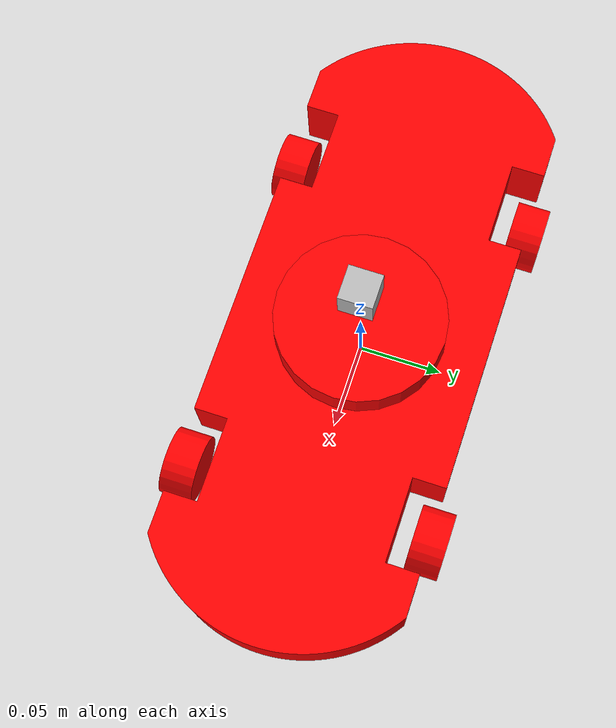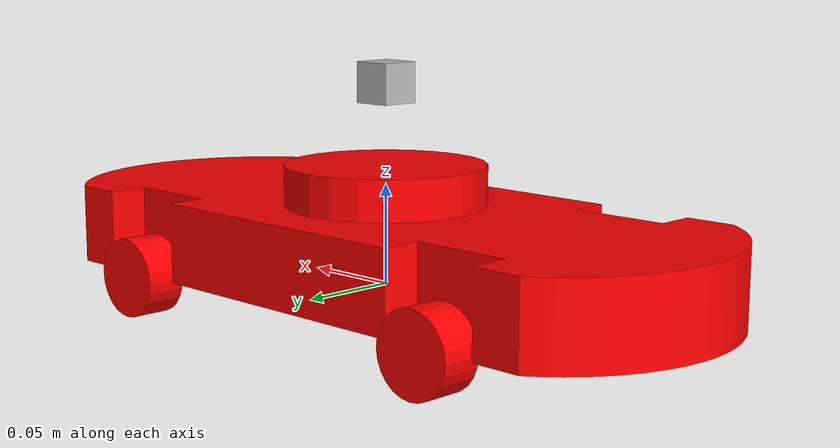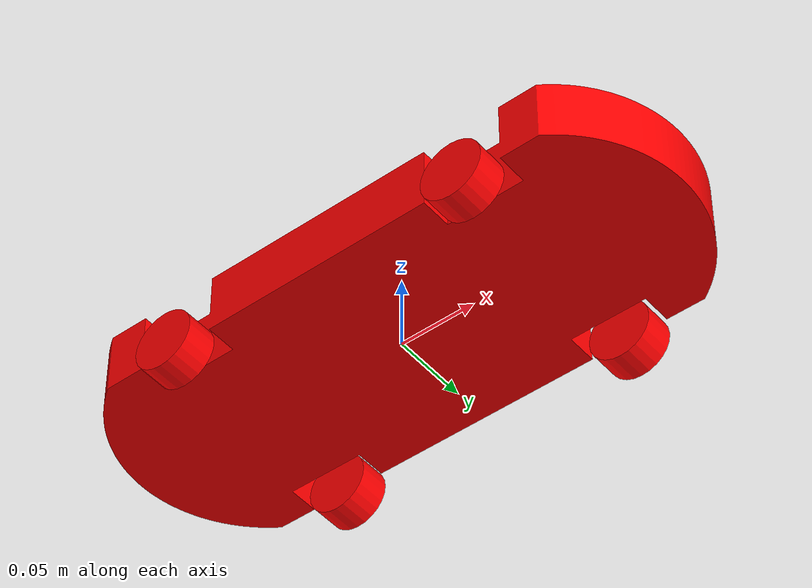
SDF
<?xml version='1.0'?>
<sdf version='1.11'>
  <model name='robotmodel'>
    <link name='robot_base'>
      <pose>0 0 0 0 0 0</pose>
      <visual name='robot-base-v'>
        <!-- mesh -->
        <geometry>
          <mesh>
			  <uri>model://robot/meshes/robot_base.stl</uri>
            <scale>0.001 0.001 0.001</scale>
          </mesh>
        </geometry>
        <material>
          <diffuse>1 0 0 1</diffuse>
          <ambient>1 0 0 1</ambient>
          <!-- specular -->
        </material>
      </visual>
      <collision name='robot-base-c'>
        <geometry>
          <mesh>
			  <uri>model://robot/meshes/robot_base.stl</uri>
            <scale>0.001 0.001 0.001</scale>
          </mesh>
        </geometry>
      </collision>
      <inertial auto='true'>
        <mass>1000</mass>
      </inertial>
    </link>

		<link name='wheel-frontleft'>
      <pose degrees='true'>0.1 0.075 0 90 0 0</pose>
      <visual name='robot-frontleft-v'>
        <!-- mesh -->
        <geometry>
					<cylinder>
						<radius>0.02</radius>
						<length>0.02</length>
					</cylinder>
        </geometry>
        <material>
          <diffuse>1 0 0 1</diffuse>
          <ambient>1 0 0 1</ambient>
          <!-- specular -->
        </material>
      </visual>
      <collision name='robot-frontleft-c'>
        <geometry>
					<!-- NOTE Different geometries for collision and visual -->
					<sphere>
						<radius>0.02</radius>
					</sphere>
        </geometry>
      </collision>
      <inertial auto='true'>
        <mass>1</mass>
      </inertial>
	</link>

	<link name='wheel-backleft'>
      <pose degrees='true'>-0.1 0.075 0 -90 0 0</pose>
      <visual name='robot-backleft-v'>
        <!-- mesh -->
        <geometry>
					<cylinder>
						<radius>0.02</radius>
						<length>0.02</length>
					</cylinder>
        </geometry>
        <material>
          <diffuse>1 0 0 1</diffuse>
          <ambient>1 0 0 1</ambient>
          <!-- specular -->
        </material>
      </visual>
      <collision name='robot-backleft-c'>
        <geometry>
					<cylinder>
						<radius>0.02</radius>
						<length>0.02</length>
					</cylinder>
        </geometry>
      </collision>
      <inertial auto='true'>
        <mass>1</mass>
      </inertial>
	</link>

	<link name='wheel-frontright'>
      <pose degrees='true'>0.1 -0.075 0 90 0 0</pose>
      <visual name='robot-frontright-v'>
        <!-- mesh -->
        <geometry>
			<cylinder>
				<radius>0.02</radius>
				<length>0.02</length>
			</cylinder>
        </geometry>
        <material>
          <diffuse>1 0 0 1</diffuse>
          <ambient>1 0 0 1</ambient>
          <!-- specular -->
        </material>
      </visual>
      <collision name='robot-frontright-c'>
        <geometry>
					<!-- NOTE Different geometries for collision and visual -->
					<sphere>
						<radius>0.02</radius>
					</sphere>
        </geometry>
      </collision>
      <inertial auto='true'>
        <mass>1</mass>
      </inertial>
	</link>

	<link name='wheel-backright'>
      <pose degrees='true'>-0.1 -0.075 0 -90 0 0</pose>
      <visual name='robot-backright-v'>
        <!-- mesh -->
        <geometry>
			<cylinder>
				<radius>0.02</radius>
				<length>0.02</length>
			</cylinder>
        </geometry>
        <material>
          <diffuse>1 0 0 1</diffuse>
          <ambient>1 0 0 1</ambient>
          <!-- specular -->
        </material>
      </visual>
      <collision name='robot-backright-c'>
        <geometry>
			<cylinder>
				<radius>0.02</radius>
				<length>0.02</length>
			</cylinder>
        </geometry>
      </collision>
      <inertial auto='true'>
        <mass>1</mass>
      </inertial>
	</link>

    <joint name='frontleft' type='ball'>
      <pose>0 0 0 0 0 0</pose>
      <parent>robot_base</parent>
      <child>wheel-frontleft</child>
      <axis>
        <xyz>0 0 1</xyz>
      </axis>
    </joint>

    <joint name='frontright' type='ball'>
      <pose>0 0 0 0 0 0</pose>
      <parent>robot_base</parent>
      <child>wheel-frontright</child>
      <axis>
        <xyz>0 0 1</xyz>
      </axis>
    </joint>

    <joint name='backleft' type='revolute'>
      <pose>0 0 0 0 0 0</pose>
      <parent>robot_base</parent>
      <child>wheel-backleft</child>
      <axis>
        <xyz>0 0 1</xyz>
      </axis>
    </joint>

    <joint name='backright' type='revolute'>
      <pose>0 0 0 0 0 0</pose>
      <parent>robot_base</parent>
      <child>wheel-backright</child>
      <axis>
        <xyz>0 0 1</xyz>
      </axis>
    </joint>

	<link name='robot_lidar'>
		<pose>0 0 0.05 0 0 0</pose>
      <visual name='robot-lidar-v'>
        <!-- mesh -->
        <geometry>
			<cylinder>
				<radius>0.05 </radius>
				<length>0.02 </length>
			</cylinder>
        </geometry>
        <material>
          <diffuse>1 0 0 1</diffuse>
          <ambient>1 0 0 1</ambient>
          <!-- specular -->
        </material>
      </visual>
      <collision name='robot-base-c'>
        <geometry>
			<cylinder>
				<radius>0.05 </radius>
				<length>0.02 </length>
			</cylinder>
        </geometry>
      </collision>

		<sensor name='robot_lidar' type='gpu_lidar'>
			<topic>lidar</topic>
			<update_rate>5</update_rate>
			<always_on>true</always_on>
			<visualize>true</visualize>
			<ray>
				<scan>
					<horizontal>
						<samples>360</samples>
						<resolution>1.00</resolution>
						<min_angle>0.000</min_angle>
						<max_angle>6.280</max_angle>
					</horizontal>
				</scan>
				<range>
					<min>0.12</min>
					<max>10</max>
					<resolution>0.01500</resolution>
				</range>
        <noise>
          <type>gaussian</type>
          <mean>0.0</mean>
          <stddev>0.01</stddev>
        </noise>
			</ray>
		</sensor>
	</link>

    <joint name='lidarjoint' type='fixed'>
      <pose>0 0 0 0 0 0</pose>
      <parent>robot_base</parent>
      <child>robot_lidar</child>
      <axis>
        <xyz>1 0 0</xyz>
      </axis>
    </joint>

    <plugin filename="gz-sim-diff-drive-system" name="gz::sim::systems::DiffDrive">
        <left_joint>backleft</left_joint>
        <right_joint>backright</right_joint>
        <wheel_separation>0.15</wheel_separation>
        <wheel_radius>0.02</wheel_radius>

		<!-- Only change these to the frames if we want to use the wheel odom as a sole source -->
		<frame_id>odom</frame_id>
		<child_frame_id>base_link</child_frame_id>
		<tf_topic>/tf</tf_topic>

        <max_linear_acceleration>1</max_linear_acceleration>
        <min_linear_acceleration>-1</min_linear_acceleration>
        <max_angular_acceleration>2</max_angular_acceleration>
        <min_angular_acceleration>-2</min_angular_acceleration>
        <max_linear_velocity>0.5</max_linear_velocity>
        <min_linear_velocity>-0.5</min_linear_velocity>
        <max_angular_velocity>1</max_angular_velocity>
        <min_angular_velocity>-1</min_angular_velocity>
      </plugin>

	  <!-- camera link -->

	  <link name="camera_front">
		  <pose>0.2 0 0.1 0 0 0</pose>
		    <inertial>
			<mass>0.05</mass>
			<inertia>
			  <ixx>0.0001</ixx>
			  <iyy>0.0001</iyy>
			  <izz>0.0001</izz>
			  <ixy>0</ixy>
			  <ixz>0</ixz>
			  <iyz>0</iyz>
			</inertia>
		  </inertial>

		  <collision name="camera_collision">
			<geometry>
			  <box>
				<size>0.03 0.03 0.03</size>
			  </box>
			</geometry>
		  </collision>

		  <sensor name="left_camera" type="wideanglecamera">
			  <!-- -0.18rad is a 10degrees incline about y-axis-->
			  <pose>0 -0.05 1 0 -0.18 0</pose>
			<always_on>true</always_on>
			<update_rate>30</update_rate>
			<visualize>true</visualize>

		  <camera>
			<horizontal_fov>3.14159</horizontal_fov>
			<image>
			  <width>1024</width>
			  <height>1024</height>
			  <format>R8G8B8</format>
			</image>
			<clip>
			  <near>0.02</near>
			  <far>100.0</far>
			</clip>

			<lens>
				<type>custom</type>
			  <custom_function>
				<c1>1.05</c1>
				<c2>4</c2>
				<f>1.0</f>
				<fun>tan</fun> <!-- Approximates fisheye -->
			  </custom_function>
			  <scale_to_hfov>true</scale_to_hfov>
			  <cutoff_angle>3.14159</cutoff_angle>
			  <env_texture_size>1024</env_texture_size>
			</lens>
		  </camera>

	  </sensor>

		  <sensor name="right_camera" type="wideanglecamera">
			<pose>0 0.05 1 0 0.18 0</pose>
			<always_on>true</always_on>
			<update_rate>30</update_rate>
			<visualize>true</visualize>

		  <camera>
			<horizontal_fov>3.14159</horizontal_fov>
			<image>
			  <width>1024</width>
			  <height>1024</height>
			  <format>R8G8B8</format>
			</image>
			<clip>
			  <near>0.02</near>
			  <far>100.0</far>
			</clip>

			<lens>
				<type>custom</type>
			  <custom_function>
				<c1>1.05</c1>
				<c2>4</c2>
				<f>1.0</f>
				<fun>tan</fun> <!-- Approximates fisheye -->
			  </custom_function>
			  <scale_to_hfov>true</scale_to_hfov>
			  <cutoff_angle>3.14159</cutoff_angle>
			  <env_texture_size>1024</env_texture_size>
			</lens>
		  </camera>

		  </sensor>
	  </link>

	<link name="imu">
		<pose>0 0 0.1 0 0 0 </pose>
		<visual name="imu-v">
			<geometry>
				<box><size>0.02 0.02 0.02</size></box>
			</geometry>
		</visual>
		<collision name="imu-c">
			<geometry>
				<box><size>0.02 0.02 0.02</size></box>
			</geometry>
		</collision>

		<sensor name="imu-sensor" type="imu">
			<topic>imu</topic>
			<update_rate>100</update_rate>
			<always_on>true</always_on>
			<visualize>true</visualize>
			<imu>
        <angular_velocity>
          <x>
            <noise type="gaussian">
              <mean>0.0</mean>
              <stddev>2e-4</stddev>
              <bias_mean>0.0000075</bias_mean>
              <bias_stddev>0.0000008</bias_stddev>
            </noise>
          </x>
          <y>
            <noise type="gaussian">
              <mean>0.0</mean>
              <stddev>2e-4</stddev>
              <bias_mean>0.0000075</bias_mean>
              <bias_stddev>0.0000008</bias_stddev>
            </noise>
          </y>
          <z>
            <noise type="gaussian">
              <mean>0.0</mean>
              <stddev>2e-4</stddev>
              <bias_mean>0.0000075</bias_mean>
              <bias_stddev>0.0000008</bias_stddev>
            </noise>
          </z>
        </angular_velocity>
        <linear_acceleration>
          <x>
            <noise type="gaussian">
              <mean>0.0</mean>
              <stddev>1.7e-2</stddev>
              <bias_mean>0.1</bias_mean>
              <bias_stddev>0.001</bias_stddev>
            </noise>
          </x>
          <y>
            <noise type="gaussian">
              <mean>0.0</mean>
              <stddev>1.7e-2</stddev>
              <bias_mean>0.1</bias_mean>
              <bias_stddev>0.001</bias_stddev>
            </noise>
          </y>
          <z>
            <noise type="gaussian">
              <mean>0.0</mean>
              <stddev>1.7e-2</stddev>
              <bias_mean>0.1</bias_mean>
              <bias_stddev>0.001</bias_stddev>
            </noise>
          </z>
        </linear_acceleration>
      </imu>
		</sensor>
	</link>

    <joint name='imujoint' type='fixed'>
      <pose>0 0 0 0 0 0</pose>
      <parent>robot_base</parent>
      <child>imu</child>
      <axis>
        <xyz>1 0 0</xyz>
      </axis>
  </joint>

    <joint name='camerajoint' type='fixed'>
      <pose>0 0 0 0 0 0</pose>
      <parent>robot_base</parent>
      <child>camera_front</child>
      <axis>
        <xyz>1 0 0</xyz>
      </axis>
    </joint>

  </model>
</sdf>
